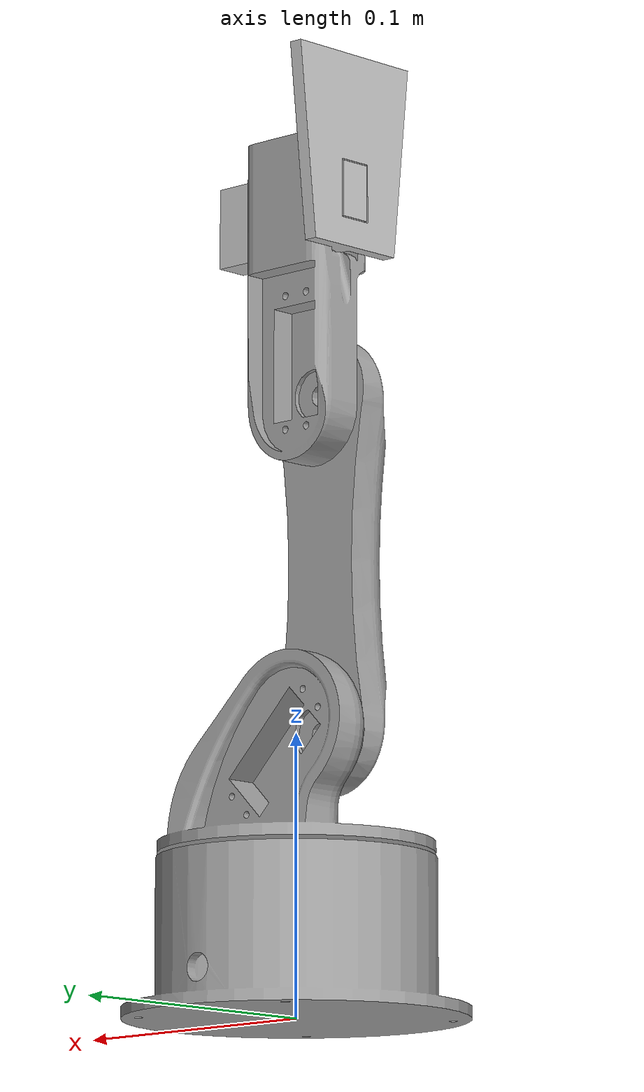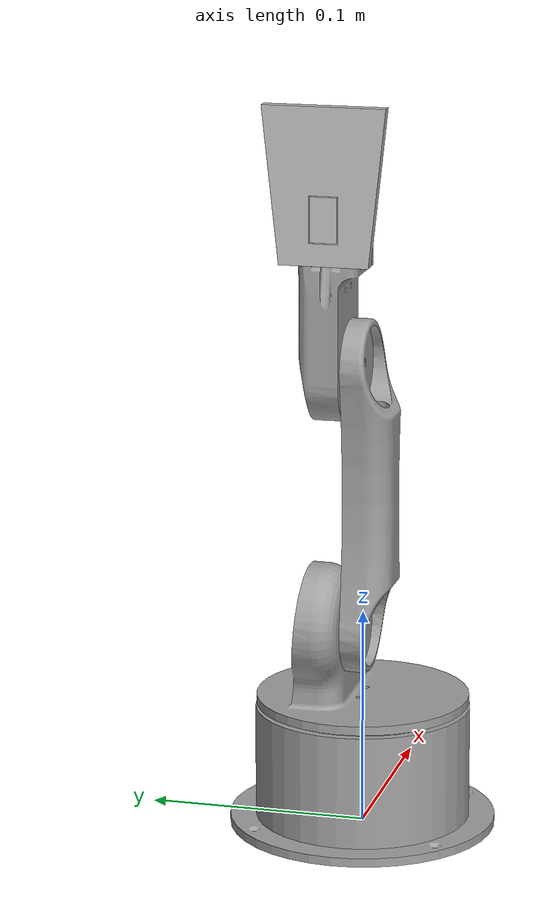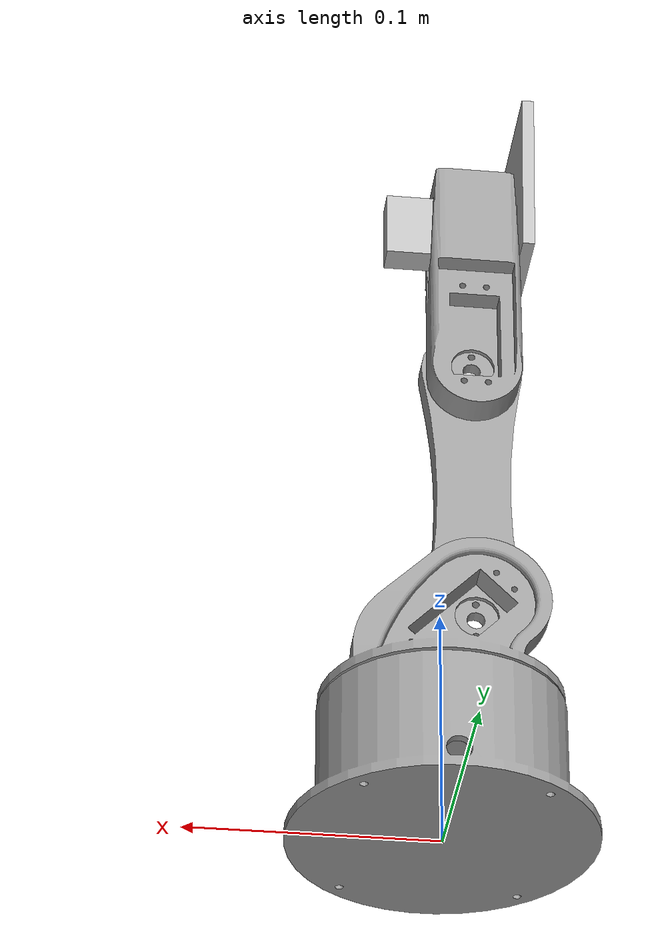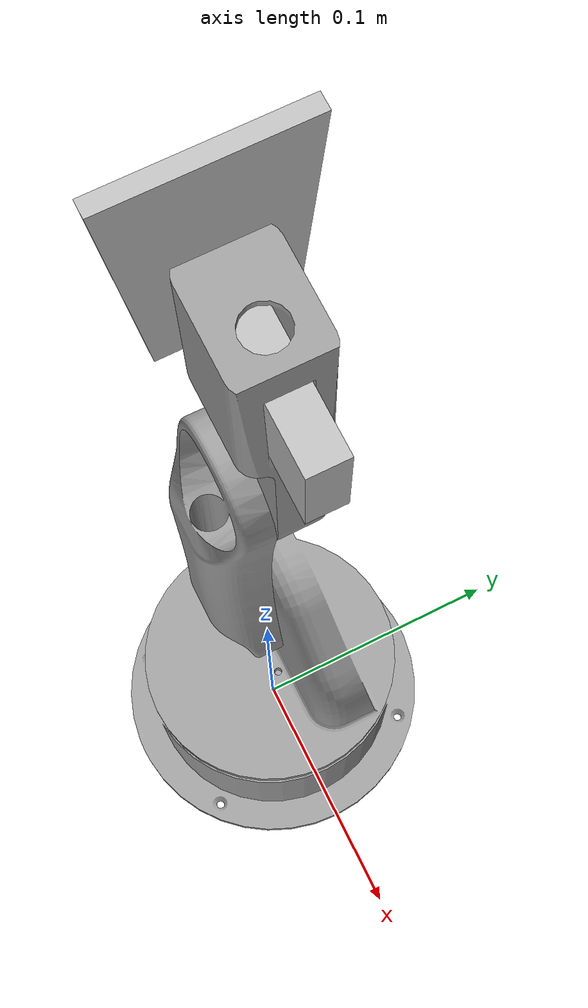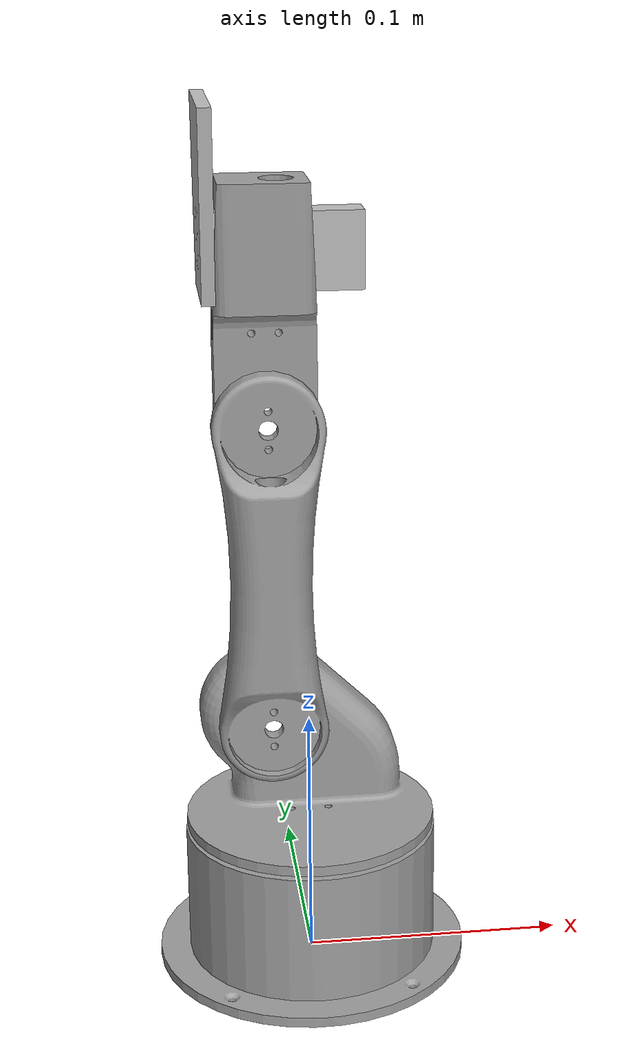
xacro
<?xml version="1.0" encoding="utf-8"?>
<robot name="robotic_arm" xmlns:xacro="http:///www.ros.org/wiki/xacro">
  <link
    name="base_link">
    <inertial>
      <origin
        xyz="-7.5348E-09 -0.00013761 0.017995"
        rpy="0 0 0" />
      <mass
        value="0.10728" />
      <inertia
        ixx="0.00014427"
        ixy="6.2688E-11"
        ixz="-2.1919E-11"
        iyy="0.00014507"
        iyz="-5.8994E-08"
        izz="0.00022021" />
    </inertial>
    <visual>
      <origin
        xyz="0 0 0"
        rpy="0 0 0" />
      <geometry>
        <mesh
          filename="file:///home/khaled/ros2_ws/src/robotic_arm/meshes/base_link.STL" />
      </geometry>
      <material
        name="">
        <color
          rgba="0.62745 0.62745 0.62745 1" />
      </material>

    </visual>
    <collision>
      <origin
        xyz="0 0 0"
        rpy="0 0 0" />
      <geometry>
        <mesh
          filename="file:///home/khaled/ros2_ws/src/robotic_arm/meshes/base_link.STL" />
      </geometry>
    </collision>
  </link>
  <link
    name="waist_Link">
    <inertial>
      <origin
        xyz="0.0074946 0.019383 -0.0014293"
        rpy="0 0 0" />
      <mass
        value="0.073648" />
      <inertia
        ixx="6.7954E-05"
        ixy="-6.43E-06"
        ixz="2.5439E-07"
        iyy="6.0133E-05"
        iyz="6.7307E-06"
        izz="5.0282E-05" />
    </inertial>
    <visual>
      <origin
        xyz="0 0 0"
        rpy="0 0 0" />
      <geometry>
        <mesh
          filename="file:///home/khaled/ros2_ws/src/robotic_arm/meshes/waist_Link.STL" />
      </geometry>
      <material
        name="">
        <color
          rgba="0.62745 0.62745 0.62745 1" />
      </material>
    </visual>
    <collision>
      <origin
        xyz="0 0 0"
        rpy="0 0 0" />
      <geometry>
        <mesh
          filename="file:///home/khaled/ros2_ws/src/robotic_arm/meshes/waist_Link.STL" />
      </geometry>
    </collision>
  </link>
  <joint
    name="base_waist_joint"
    type="revolute">
    <origin
      xyz="0 0 0.0575"
      rpy="1.5708 0 1.5708" />
    <parent
      link="base_link" />
    <child
      link="waist_Link" />
    <axis
      xyz="0 1 0" />
    <limit
      lower="-1.571"
      upper="1.571"
      effort="10"
      velocity="3" />
  </joint>
  <link
    name="arm_Link">
    <inertial>
      <origin
        xyz="1.0586E-07 0.06 -0.0049709"
        rpy="0 0 0" />
      <mass
        value="0.064059" />
      <inertia
        ixx="0.00010375"
        ixy="3.5389E-10"
        ixz="1.0836E-10"
        iyy="9.2286E-06"
        iyz="-4.5873E-12"
        izz="0.00010863" />
    </inertial>
    <visual>
      <origin
        xyz="0 0 0"
        rpy="0 0 0" />
      <geometry>
        <mesh
          filename="file:///home/khaled/ros2_ws/src/robotic_arm/meshes/arm_Link.STL" />
      </geometry>
      <material
        name="">
        <color
          rgba="0.62745 0.62745 0.62745 1" />
      </material>
    </visual>
    <collision>
      <origin
        xyz="0 0 0"
        rpy="0 0 0" />
      <geometry>
        <mesh
          filename="file:///home/khaled/ros2_ws/src/robotic_arm/meshes/arm_Link.STL" />
      </geometry>
    </collision>
  </link>
  <joint
    name="waist_arm_joint"
    type="revolute">
    <origin
      xyz="0 0.04028 -0.01391"
      rpy="0 1.5708 0" />
    <parent
      link="waist_Link" />
    <child
      link="arm_Link" />
    <axis
      xyz="0 0 1" />
    <limit
      lower="-1.571"
      upper="1.571"
      effort="10"
      velocity="3" />
  </joint>
  <link
    name="end_Link">
    <inertial>
      <origin
        xyz="0.041711 3.1659E-05 -0.00972"
        rpy="0 0 0" />
      <mass
        value="0.047098" />
      <inertia
        ixx="8.7227E-06"
        ixy="-6.9702E-08"
        ixz="-4.0365E-07"
        iyy="5.1401E-05"
        iyz="-1.8365E-10"
        izz="5.4665E-05" />
    </inertial>
    <visual>
      <origin
        xyz="0 0 0"
        rpy="0 0 0" />
      <geometry>
        <mesh
          filename="file:///home/khaled/ros2_ws/src/robotic_arm/meshes/end_Link.STL" />
      </geometry>
      <material
        name="">
        <color
          rgba="0.62745 0.62745 0.62745 1" />
      </material>
    </visual>
    <collision>
      <origin
        xyz="0 0 0"
        rpy="0 0 0" />
      <geometry>
        <mesh
          filename="file:///home/khaled/ros2_ws/src/robotic_arm/meshes/end_Link.STL" />
      </geometry>
    </collision>
  </link>
  <joint
    name="arm_end_joint"
    type="revolute">
    <origin
      xyz="0 0.12 0"
      rpy="3.1416 0 1.5708" />
    <parent
      link="arm_Link" />
    <child
      link="end_Link" />
    <axis
      xyz="0 0 -1" />
    <limit
      lower="-1.571"
      upper="1.571"
      effort="10"
      velocity="3" />
  </joint>
  <link
    name="support_Link">
    <inertial>
      <origin
        xyz="0.0096128 0.01329 0.0015"
        rpy="0 0 0" />
      <mass
        value="0.032654" />
      <inertia
        ixx="8.6378E-06"
        ixy="-1.6109E-07"
        ixz="3.8781E-22"
        iyy="1.0677E-05"
        iyz="-1.0792E-21"
        izz="1.2956E-05" />
    </inertial>
    <visual>
      <origin
        xyz="0 0 0"
        rpy="0 0 0" />
      <geometry>
        <mesh
          filename="file:///home/khaled/ros2_ws/src/robotic_arm/meshes/support_Link.STL" />
      </geometry>
      <material
        name="">
        <color
          rgba="0.75294 0.75294 0.75294 1" />
      </material>
    </visual>
    <collision>
      <origin
        xyz="0 0 0"
        rpy="0 0 0" />
      <geometry>
        <mesh
          filename="file:///home/khaled/ros2_ws/src/robotic_arm/meshes/support_Link.STL" />
      </geometry>
    </collision>
  </link>
  <joint
    name="end_support_joint"
    type="fixed">
    <origin
      xyz="0.065057 -0.0082418 -0.011"
      rpy="0 0 0" />
    <parent
      link="end_Link" />
    <child
      link="support_Link" />
    <axis
      xyz="0 0 0" />
  </joint>
</robot>
